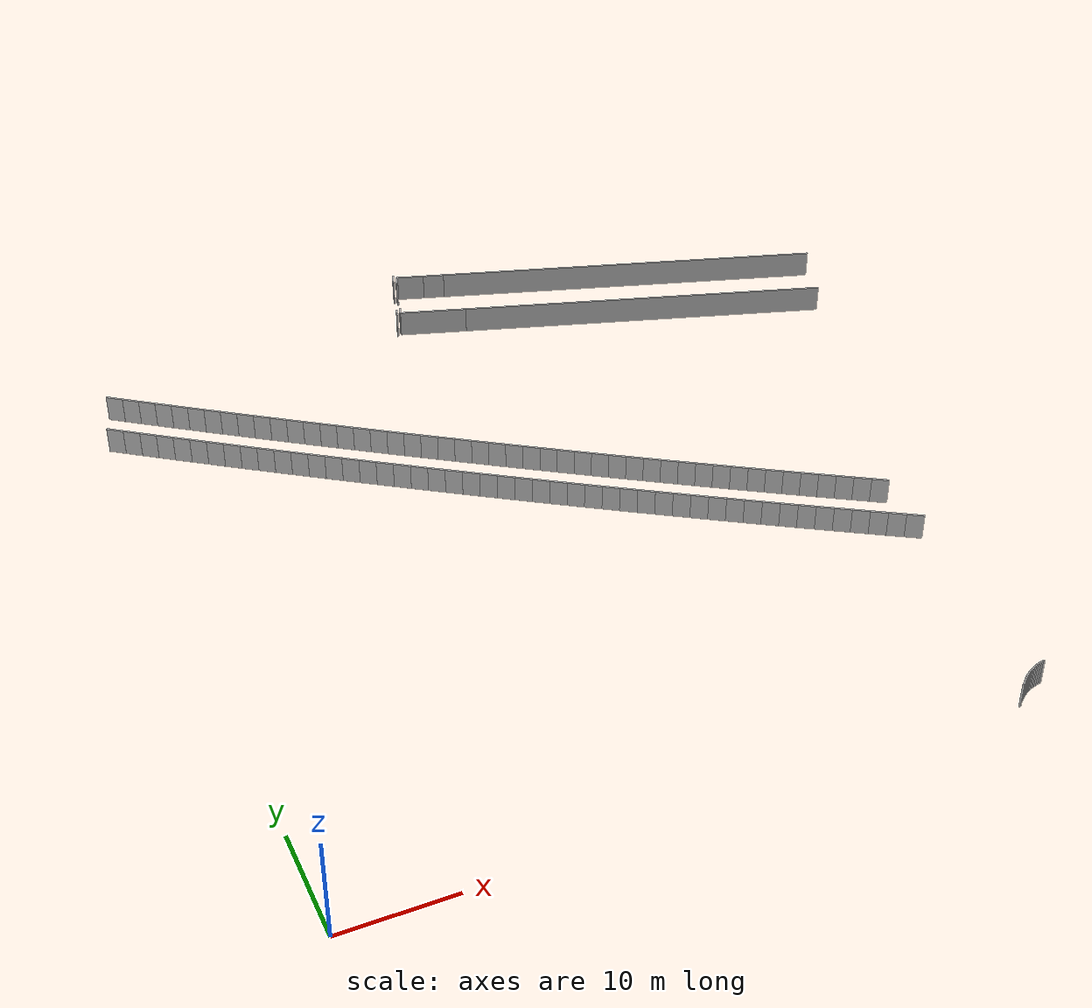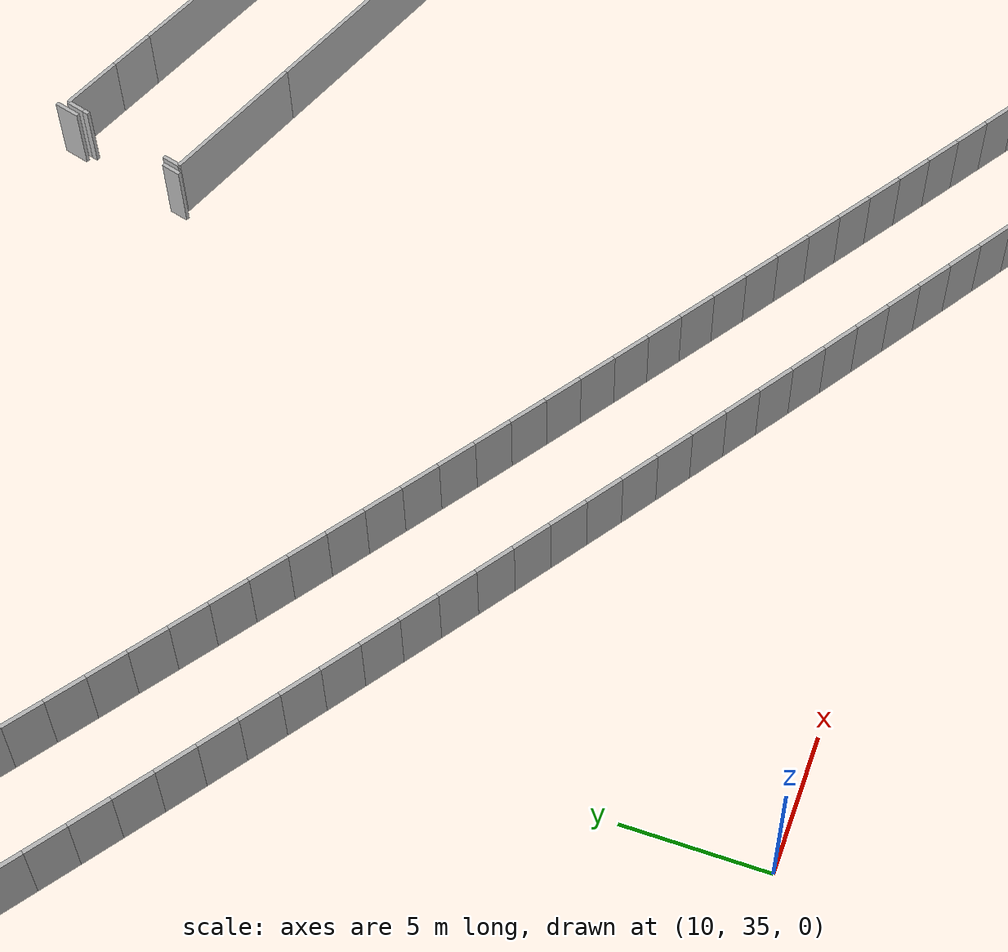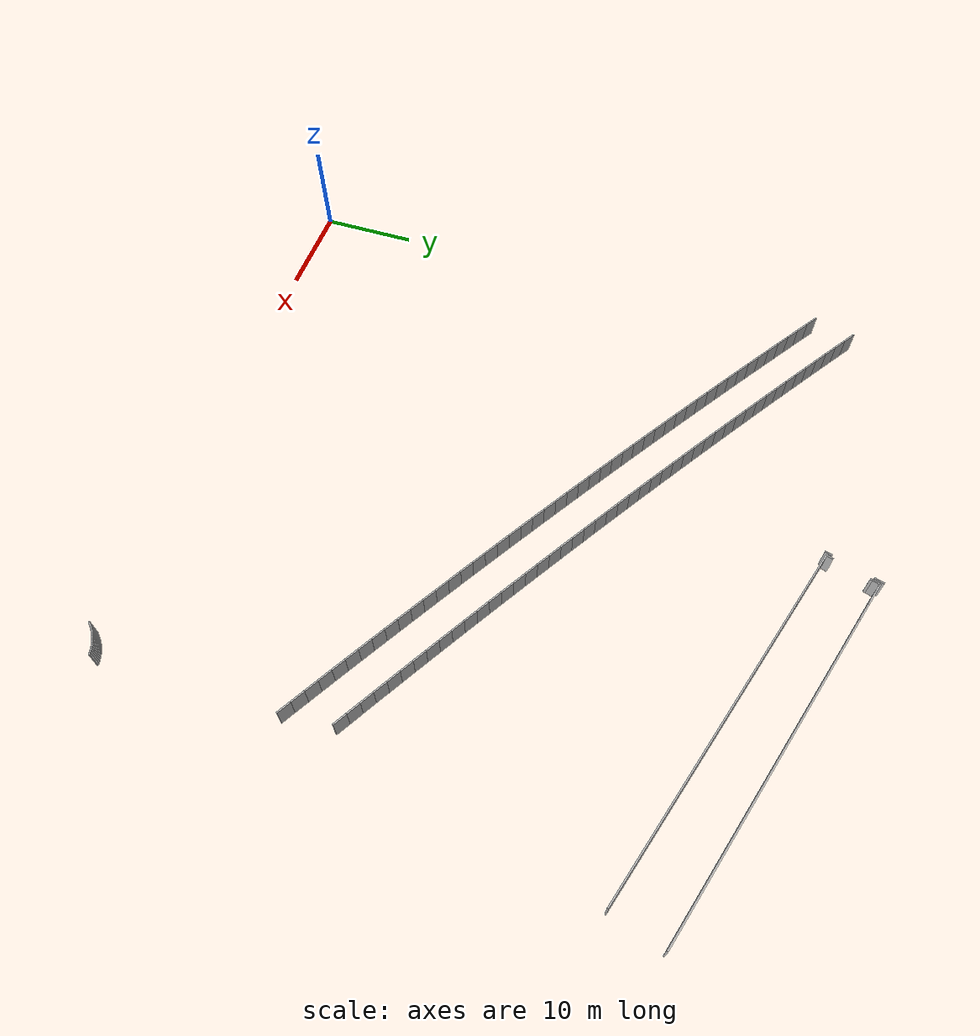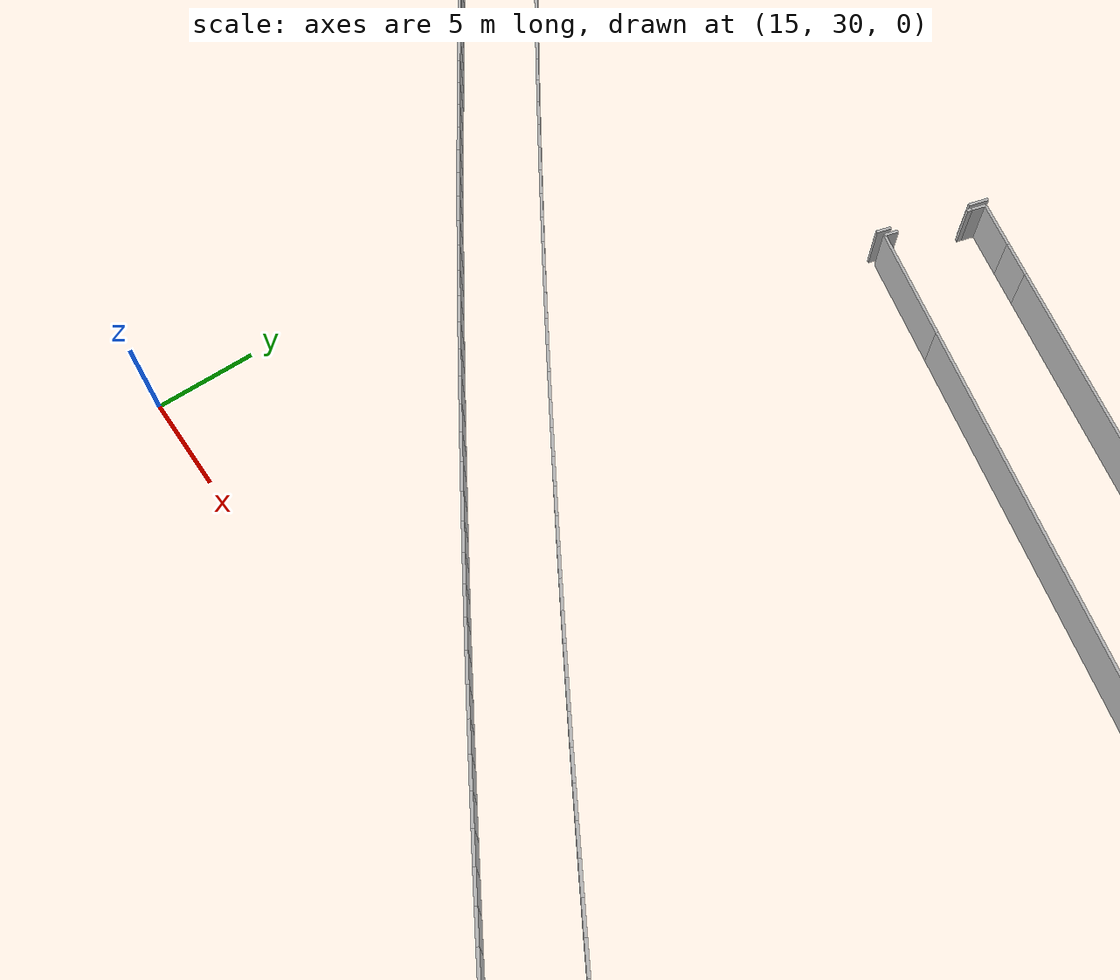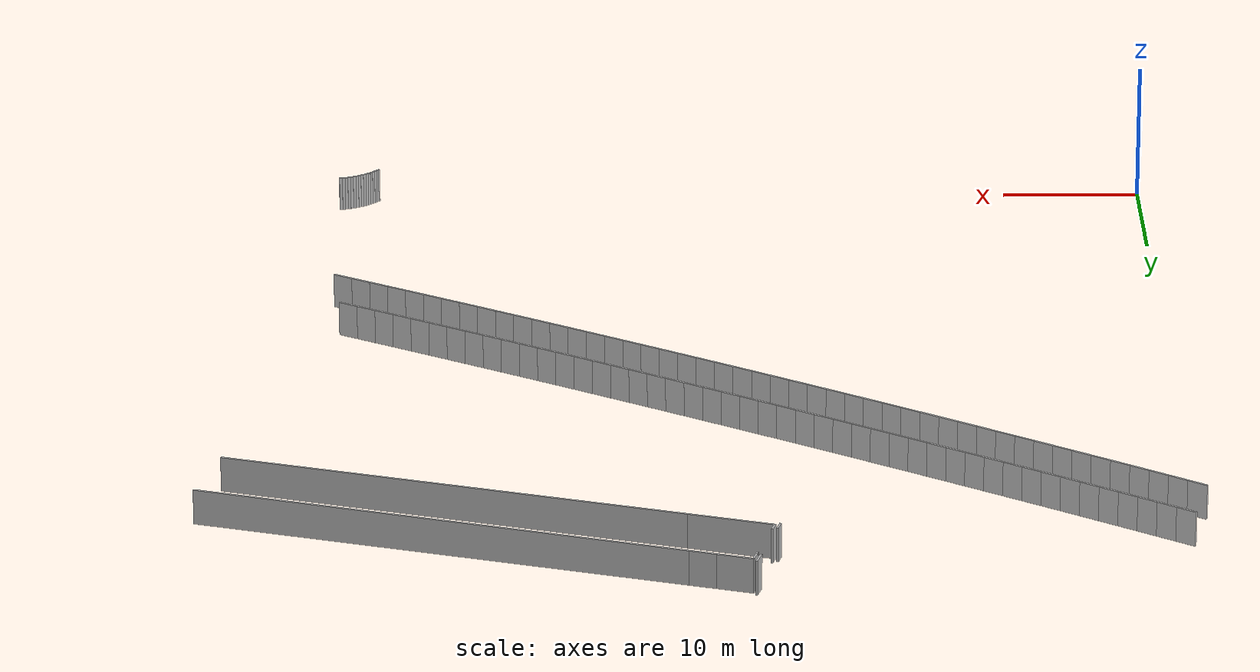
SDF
<sdf version="1.6">
 <model name="sps_0603">
  <static>1</static>
  <allow_auto_disable>0</allow_auto_disable>
  <link name="Wall8">
   <collision name="collision"><geometry><box><size>1.06106 0.15 2.5</size></box></geometry></collision>
   <visual name="visual">
    <geometry><box><size>1.06106 0.15 2.5</size></box></geometry>
    <transparency>0.0</transparency>
   </visual>
   <pose>29.9149 68.4915 1.25 0 0 -1.85665</pose>
  </link>
  <link name="Wall177">
   <collision name="collision"><geometry><box><size>0.246796 0.15 2.5</size></box></geometry></collision>
   <visual name="visual">
    <geometry><box><size>0.246796 0.15 2.5</size></box></geometry>
    <transparency>0.0</transparency>
   </visual>
   <pose>30.017 67.7747 1.25 0 -0 1.28545</pose>
  </link>
  <link name="Wall178">
   <collision name="collision"><geometry><box><size>0.765576 0.15 2.5</size></box></geometry></collision>
   <visual name="visual">
    <geometry><box><size>0.765576 0.15 2.5</size></box></geometry>
    <transparency>0.0</transparency>
   </visual>
   <pose>30.1595 68.2604 1.25 0 -0 1.28545</pose>
  </link>
  <link name="Wall278">
   <collision name="collision"><geometry><box><size>32.9414 0.15 2.5</size></box></geometry></collision>
   <visual name="visual">
    <geometry><box><size>32.9414 0.15 2.5</size></box></geometry>
    <transparency>0.0</transparency>
   </visual>
   <pose>50.2124 56.7392 1.25 0 -0 2.84321</pose>
  </link>
  <link name="Wall279">
   <collision name="collision"><geometry><box><size>6.01664 0.15 2.5</size></box></geometry></collision>
   <visual name="visual">
    <geometry><box><size>6.01664 0.15 2.5</size></box></geometry>
    <transparency>0.0</transparency>
   </visual>
   <pose>31.594 62.4655 1.25 0 -0 2.84321</pose>
  </link>
  <link name="Wall338">
   <collision name="collision"><geometry><box><size>0.779484 0.15 2.5</size></box></geometry></collision>
   <visual name="visual">
    <geometry><box><size>0.779484 0.15 2.5</size></box></geometry>
    <transparency>0.0</transparency>
   </visual>
   <pose>28.4556 63.5212 1.25 0 -0 1.28471</pose>
  </link>
  <link name="Wall422">
   <collision name="collision"><geometry><box><size>0.728133 0.15 2.5</size></box></geometry></collision>
   <visual name="visual">
    <geometry><box><size>0.728133 0.15 2.5</size></box></geometry>
    <transparency>0.0</transparency>
   </visual>
   <pose>28.8209 63.6993 1.25 0 -0 1.28624</pose>
  </link>
  <link name="Wall599">
   <collision name="collision"><geometry><box><size>2.4989 0.15 2.5</size></box></geometry></collision>
   <visual name="visual">
    <geometry><box><size>2.4989 0.15 2.5</size></box></geometry>
    <transparency>0.0</transparency>
   </visual>
   <pose>31.4615 68.2604 1.25 0 0 -0.298385</pose>
  </link>
  <link name="Wall600">
   <collision name="collision"><geometry><box><size>1.89758 0.15 2.5</size></box></geometry></collision>
   <visual name="visual">
    <geometry><box><size>1.89758 0.15 2.5</size></box></geometry>
    <transparency>0.0</transparency>
   </visual>
   <pose>33.5626 67.6142 1.25 0 0 -0.298385</pose>
  </link>
  <link name="Wall601">
   <collision name="collision"><geometry><box><size>34.6331 0.15 2.5</size></box></geometry></collision>
   <visual name="visual">
    <geometry><box><size>34.6331 0.15 2.5</size></box></geometry>
    <transparency>0.0</transparency>
   </visual>
   <pose>51.0208 62.2446 1.25 0 0 -0.298385</pose>
  </link>
  <link name="Wall2512">
   <collision name="collision"><geometry><box><size>0.130798 0.15 2.5</size></box></geometry></collision>
   <visual name="visual">
    <geometry><box><size>0.130798 0.15 2.5</size></box></geometry>
    <transparency>0.0</transparency>
   </visual>
   <pose>56.5082 0.300887 1.25 0 -0 0.557066</pose>
  </link>
  <link name="Wall2513">
   <collision name="collision"><geometry><box><size>0.205358 0.15 2.5</size></box></geometry></collision>
   <visual name="visual">
    <geometry><box><size>0.205358 0.15 2.5</size></box></geometry>
    <transparency>0.0</transparency>
   </visual>
   <pose>56.6314 0.412673 1.25 0 -0 0.851016</pose>
  </link>
  <link name="Wall2514">
   <collision name="collision"><geometry><box><size>0.20509 0.15 2.5</size></box></geometry></collision>
   <visual name="visual">
    <geometry><box><size>0.20509 0.15 2.5</size></box></geometry>
    <transparency>0.0</transparency>
   </visual>
   <pose>56.77 0.563888 1.25 0 -0 0.806233</pose>
  </link>
  <link name="Wall2515">
   <collision name="collision"><geometry><box><size>0.205411 0.15 2.5</size></box></geometry></collision>
   <visual name="visual">
    <geometry><box><size>0.205411 0.15 2.5</size></box></geometry>
    <transparency>0.0</transparency>
   </visual>
   <pose>56.9154 0.708693 1.25 0 -0 0.760603</pose>
  </link>
  <link name="Wall2516">
   <collision name="collision"><geometry><box><size>0.205158 0.15 2.5</size></box></geometry></collision>
   <visual name="visual">
    <geometry><box><size>0.205158 0.15 2.5</size></box></geometry>
    <transparency>0.0</transparency>
   </visual>
   <pose>57.0673 0.846785 1.25 0 -0 0.7155</pose>
  </link>
  <link name="Wall2517">
   <collision name="collision"><geometry><box><size>0.205152 0.15 2.5</size></box></geometry></collision>
   <visual name="visual">
    <geometry><box><size>0.205152 0.15 2.5</size></box></geometry>
    <transparency>0.0</transparency>
   </visual>
   <pose>57.2251 0.977797 1.25 0 -0 0.67028</pose>
  </link>
  <link name="Wall2518">
   <collision name="collision"><geometry><box><size>0.205097 0.15 2.5</size></box></geometry></collision>
   <visual name="visual">
    <geometry><box><size>0.205097 0.15 2.5</size></box></geometry>
    <transparency>0.0</transparency>
   </visual>
   <pose>57.3885 1.10161 1.25 0 -0 0.626061</pose>
  </link>
  <link name="Wall2519">
   <collision name="collision"><geometry><box><size>0.205175 0.15 2.5</size></box></geometry></collision>
   <visual name="visual">
    <geometry><box><size>0.205175 0.15 2.5</size></box></geometry>
    <transparency>0.0</transparency>
   </visual>
   <pose>57.5575 1.21791 1.25 0 -0 0.579917</pose>
  </link>
  <link name="Wall2520">
   <collision name="collision"><geometry><box><size>0.205332 0.15 2.5</size></box></geometry></collision>
   <visual name="visual">
    <geometry><box><size>0.205332 0.15 2.5</size></box></geometry>
    <transparency>0.0</transparency>
   </visual>
   <pose>57.7316 1.32652 1.25 0 -0 0.535628</pose>
  </link>
  <link name="Wall2521">
   <collision name="collision"><geometry><box><size>0.205171 0.15 2.5</size></box></geometry></collision>
   <visual name="visual">
    <geometry><box><size>0.205171 0.15 2.5</size></box></geometry>
    <transparency>0.0</transparency>
   </visual>
   <pose>57.9104 1.4272 1.25 0 -0 0.489992</pose>
  </link>
  <link name="Wall2522">
   <collision name="collision"><geometry><box><size>0.205276 0.15 2.5</size></box></geometry></collision>
   <visual name="visual">
    <geometry><box><size>0.205276 0.15 2.5</size></box></geometry>
    <transparency>0.0</transparency>
   </visual>
   <pose>58.0936 1.51958 1.25 0 -0 0.4441</pose>
  </link>
  <link name="Wall2523">
   <collision name="collision"><geometry><box><size>0.205096 0.15 2.5</size></box></geometry></collision>
   <visual name="visual">
    <geometry><box><size>0.205096 0.15 2.5</size></box></geometry>
    <transparency>0.0</transparency>
   </visual>
   <pose>58.2807 1.60368 1.25 0 -0 0.400789</pose>
  </link>
  <link name="Wall2524">
   <collision name="collision"><geometry><box><size>0.205381 0.15 2.5</size></box></geometry></collision>
   <visual name="visual">
    <geometry><box><size>0.205381 0.15 2.5</size></box></geometry>
    <transparency>0.0</transparency>
   </visual>
   <pose>58.4714 1.6794 1.25 0 -0 0.355119</pose>
  </link>
  <link name="Wall2525">
   <collision name="collision"><geometry><box><size>0.205148 0.15 2.5</size></box></geometry></collision>
   <visual name="visual">
    <geometry><box><size>0.205148 0.15 2.5</size></box></geometry>
    <transparency>0.0</transparency>
   </visual>
   <pose>58.6654 1.74629 1.25 0 -0 0.308955</pose>
  </link>
  <link name="Wall2526">
   <collision name="collision"><geometry><box><size>0.205122 0.15 2.5</size></box></geometry></collision>
   <visual name="visual">
    <geometry><box><size>0.205122 0.15 2.5</size></box></geometry>
    <transparency>0.0</transparency>
   </visual>
   <pose>58.8621 1.80427 1.25 0 -0 0.264321</pose>
  </link>
  <link name="Wall2527">
   <collision name="collision"><geometry><box><size>0.205147 0.15 2.5</size></box></geometry></collision>
   <visual name="visual">
    <geometry><box><size>0.205147 0.15 2.5</size></box></geometry>
    <transparency>0.0</transparency>
   </visual>
   <pose>59.0612 1.85347 1.25 0 -0 0.220153</pose>
  </link>
  <link name="Wall2528">
   <collision name="collision"><geometry><box><size>0.205267 0.15 2.5</size></box></geometry></collision>
   <visual name="visual">
    <geometry><box><size>0.205267 0.15 2.5</size></box></geometry>
    <transparency>0.0</transparency>
   </visual>
   <pose>59.2624 1.89369 1.25 0 -0 0.174534</pose>
  </link>
  <link name="Wall8672">
   <collision name="collision"><geometry><box><size>1.49904 0.15 2.5</size></box></geometry></collision>
   <visual name="visual">
    <geometry><box><size>1.49904 0.15 2.5</size></box></geometry>
    <transparency>0.0</transparency>
   </visual>
   <pose>0.140952 57.1969 1.25 0 0 -0.596416</pose>
  </link>
  <link name="Wall8673">
   <collision name="collision"><geometry><box><size>1.49892 0.15 2.5</size></box></geometry></collision>
   <visual name="visual">
    <geometry><box><size>1.49892 0.15 2.5</size></box></geometry>
    <transparency>0.0</transparency>
   </visual>
   <pose>1.38186 56.356 1.25 0 0 -0.5947</pose>
  </link>
  <link name="Wall8674">
   <collision name="collision"><geometry><box><size>1.49899 0.15 2.5</size></box></geometry></collision>
   <visual name="visual">
    <geometry><box><size>1.49899 0.15 2.5</size></box></geometry>
    <transparency>0.0</transparency>
   </visual>
   <pose>2.62414 55.5172 1.25 0 0 -0.593096</pose>
  </link>
  <link name="Wall8675">
   <collision name="collision"><geometry><box><size>1.49898 0.15 2.5</size></box></geometry></collision>
   <visual name="visual">
    <geometry><box><size>1.49898 0.15 2.5</size></box></geometry>
    <transparency>0.0</transparency>
   </visual>
   <pose>3.86773 54.6803 1.25 0 0 -0.591628</pose>
  </link>
  <link name="Wall8676">
   <collision name="collision"><geometry><box><size>1.49887 0.15 2.5</size></box></geometry></collision>
   <visual name="visual">
    <geometry><box><size>1.49887 0.15 2.5</size></box></geometry>
    <transparency>0.0</transparency>
   </visual>
   <pose>5.11254 53.8453 1.25 0 0 -0.590058</pose>
  </link>
  <link name="Wall8677">
   <collision name="collision"><geometry><box><size>1.49895 0.15 2.5</size></box></geometry></collision>
   <visual name="visual">
    <geometry><box><size>1.49895 0.15 2.5</size></box></geometry>
    <transparency>0.0</transparency>
   </visual>
   <pose>6.35866 53.0123 1.25 0 0 -0.588454</pose>
  </link>
  <link name="Wall8678">
   <collision name="collision"><geometry><box><size>1.49892 0.15 2.5</size></box></geometry></collision>
   <visual name="visual">
    <geometry><box><size>1.49892 0.15 2.5</size></box></geometry>
    <transparency>0.0</transparency>
   </visual>
   <pose>7.60616 52.1813 1.25 0 0 -0.586805</pose>
  </link>
  <link name="Wall8679">
   <collision name="collision"><geometry><box><size>1.49899 0.15 2.5</size></box></geometry></collision>
   <visual name="visual">
    <geometry><box><size>1.49899 0.15 2.5</size></box></geometry>
    <transparency>0.0</transparency>
   </visual>
   <pose>8.85494 51.3522 1.25 0 0 -0.585405</pose>
  </link>
  <link name="Wall8680">
   <collision name="collision"><geometry><box><size>1.49891 0.15 2.5</size></box></geometry></collision>
   <visual name="visual">
    <geometry><box><size>1.49891 0.15 2.5</size></box></geometry>
    <transparency>0.0</transparency>
   </visual>
   <pose>10.105 50.5251 1.25 0 0 -0.583632</pose>
  </link>
  <link name="Wall8681">
   <collision name="collision"><geometry><box><size>1.49898 0.15 2.5</size></box></geometry></collision>
   <visual name="visual">
    <geometry><box><size>1.49898 0.15 2.5</size></box></geometry>
    <transparency>0.0</transparency>
   </visual>
   <pose>11.3565 49.7001 1.25 0 0 -0.581995</pose>
  </link>
  <link name="Wall8682">
   <collision name="collision"><geometry><box><size>1.49903 0.15 2.5</size></box></geometry></collision>
   <visual name="visual">
    <geometry><box><size>1.49903 0.15 2.5</size></box></geometry>
    <transparency>0.0</transparency>
   </visual>
   <pose>12.6093 48.877 1.25 0 0 -0.580561</pose>
  </link>
  <link name="Wall8683">
   <collision name="collision"><geometry><box><size>1.49874 0.15 2.5</size></box></geometry></collision>
   <visual name="visual">
    <geometry><box><size>1.49874 0.15 2.5</size></box></geometry>
    <transparency>0.0</transparency>
   </visual>
   <pose>13.8632 48.0558 1.25 0 0 -0.57908</pose>
  </link>
  <link name="Wall8684">
   <collision name="collision"><geometry><box><size>1.49905 0.15 2.5</size></box></geometry></collision>
   <visual name="visual">
    <geometry><box><size>1.49905 0.15 2.5</size></box></geometry>
    <transparency>0.0</transparency>
   </visual>
   <pose>15.1185 47.2366 1.25 0 0 -0.577387</pose>
  </link>
  <link name="Wall8685">
   <collision name="collision"><geometry><box><size>1.49895 0.15 2.5</size></box></geometry></collision>
   <visual name="visual">
    <geometry><box><size>1.49895 0.15 2.5</size></box></geometry>
    <transparency>0.0</transparency>
   </visual>
   <pose>16.3752 46.4195 1.25 0 0 -0.575636</pose>
  </link>
  <link name="Wall8686">
   <collision name="collision"><geometry><box><size>1.49901 0.15 2.5</size></box></geometry></collision>
   <visual name="visual">
    <geometry><box><size>1.49901 0.15 2.5</size></box></geometry>
    <transparency>0.0</transparency>
   </visual>
   <pose>17.6332 45.6044 1.25 0 0 -0.574202</pose>
  </link>
  <link name="Wall8687">
   <collision name="collision"><geometry><box><size>1.49889 0.15 2.5</size></box></geometry></collision>
   <visual name="visual">
    <geometry><box><size>1.49889 0.15 2.5</size></box></geometry>
    <transparency>0.0</transparency>
   </visual>
   <pose>18.8924 44.7912 1.25 0 0 -0.572654</pose>
  </link>
  <link name="Wall8688">
   <collision name="collision"><geometry><box><size>1.49883 0.15 2.5</size></box></geometry></collision>
   <visual name="visual">
    <geometry><box><size>1.49883 0.15 2.5</size></box></geometry>
    <transparency>0.0</transparency>
   </visual>
   <pose>20.1527 43.98 1.25 0 0 -0.571083</pose>
  </link>
  <link name="Wall8689">
   <collision name="collision"><geometry><box><size>1.499 0.15 2.5</size></box></geometry></collision>
   <visual name="visual">
    <geometry><box><size>1.499 0.15 2.5</size></box></geometry>
    <transparency>0.0</transparency>
   </visual>
   <pose>21.4145 43.1708 1.25 0 0 -0.569459</pose>
  </link>
  <link name="Wall8690">
   <collision name="collision"><geometry><box><size>1.49894 0.15 2.5</size></box></geometry></collision>
   <visual name="visual">
    <geometry><box><size>1.49894 0.15 2.5</size></box></geometry>
    <transparency>0.0</transparency>
   </visual>
   <pose>22.6775 42.3635 1.25 0 0 -0.568035</pose>
  </link>
  <link name="Wall8691">
   <collision name="collision"><geometry><box><size>1.4989 0.15 2.5</size></box></geometry></collision>
   <visual name="visual">
    <geometry><box><size>1.4989 0.15 2.5</size></box></geometry>
    <transparency>0.0</transparency>
   </visual>
   <pose>23.9417 41.5583 1.25 0 0 -0.56617</pose>
  </link>
  <link name="Wall8692">
   <collision name="collision"><geometry><box><size>1.49895 0.15 2.5</size></box></geometry></collision>
   <visual name="visual">
    <geometry><box><size>1.49895 0.15 2.5</size></box></geometry>
    <transparency>0.0</transparency>
   </visual>
   <pose>25.2074 40.7552 1.25 0 0 -0.564702</pose>
  </link>
  <link name="Wall8693">
   <collision name="collision"><geometry><box><size>1.49901 0.15 2.5</size></box></geometry></collision>
   <visual name="visual">
    <geometry><box><size>1.49901 0.15 2.5</size></box></geometry>
    <transparency>0.0</transparency>
   </visual>
   <pose>26.4743 39.954 1.25 0 0 -0.563088</pose>
  </link>
  <link name="Wall8694">
   <collision name="collision"><geometry><box><size>1.49894 0.15 2.5</size></box></geometry></collision>
   <visual name="visual">
    <geometry><box><size>1.49894 0.15 2.5</size></box></geometry>
    <transparency>0.0</transparency>
   </visual>
   <pose>27.7424 39.1547 1.25 0 0 -0.56172</pose>
  </link>
  <link name="Wall8695">
   <collision name="collision"><geometry><box><size>1.49891 0.15 2.5</size></box></geometry></collision>
   <visual name="visual">
    <geometry><box><size>1.49891 0.15 2.5</size></box></geometry>
    <transparency>0.0</transparency>
   </visual>
   <pose>29.0116 38.3574 1.25 0 0 -0.560002</pose>
  </link>
  <link name="Wall8696">
   <collision name="collision"><geometry><box><size>1.49893 0.15 2.5</size></box></geometry></collision>
   <visual name="visual">
    <geometry><box><size>1.49893 0.15 2.5</size></box></geometry>
    <transparency>0.0</transparency>
   </visual>
   <pose>30.2822 37.5622 1.25 0 0 -0.558409</pose>
  </link>
  <link name="Wall8697">
   <collision name="collision"><geometry><box><size>1.49903 0.15 2.5</size></box></geometry></collision>
   <visual name="visual">
    <geometry><box><size>1.49903 0.15 2.5</size></box></geometry>
    <transparency>0.0</transparency>
   </visual>
   <pose>31.5542 36.769 1.25 0 0 -0.55683</pose>
  </link>
  <link name="Wall8698">
   <collision name="collision"><geometry><box><size>1.49898 0.15 2.5</size></box></geometry></collision>
   <visual name="visual">
    <geometry><box><size>1.49898 0.15 2.5</size></box></geometry>
    <transparency>0.0</transparency>
   </visual>
   <pose>32.8274 35.9778 1.25 0 0 -0.555224</pose>
  </link>
  <link name="Wall8699">
   <collision name="collision"><geometry><box><size>1.49878 0.15 2.5</size></box></geometry></collision>
   <visual name="visual">
    <geometry><box><size>1.49878 0.15 2.5</size></box></geometry>
    <transparency>0.0</transparency>
   </visual>
   <pose>34.1016 35.1886 1.25 0 0 -0.553773</pose>
  </link>
  <link name="Wall8700">
   <collision name="collision"><geometry><box><size>1.49912 0.15 2.5</size></box></geometry></collision>
   <visual name="visual">
    <geometry><box><size>1.49912 0.15 2.5</size></box></geometry>
    <transparency>0.0</transparency>
   </visual>
   <pose>35.3773 34.4014 1.25 0 0 -0.552052</pose>
  </link>
  <link name="Wall8701">
   <collision name="collision"><geometry><box><size>1.4988 0.15 2.5</size></box></geometry></collision>
   <visual name="visual">
    <geometry><box><size>1.4988 0.15 2.5</size></box></geometry>
    <transparency>0.0</transparency>
   </visual>
   <pose>36.6542 33.6163 1.25 0 0 -0.550462</pose>
  </link>
  <link name="Wall8702">
   <collision name="collision"><geometry><box><size>1.49877 0.15 2.5</size></box></geometry></collision>
   <visual name="visual">
    <geometry><box><size>1.49877 0.15 2.5</size></box></geometry>
    <transparency>0.0</transparency>
   </visual>
   <pose>37.9322 32.8333 1.25 0 0 -0.548947</pose>
  </link>
  <link name="Wall8703">
   <collision name="collision"><geometry><box><size>1.49907 0.15 2.5</size></box></geometry></collision>
   <visual name="visual">
    <geometry><box><size>1.49907 0.15 2.5</size></box></geometry>
    <transparency>0.0</transparency>
   </visual>
   <pose>39.2114 32.0522 1.25 0 0 -0.547395</pose>
  </link>
  <link name="Wall8704">
   <collision name="collision"><geometry><box><size>1.49889 0.15 2.5</size></box></geometry></collision>
   <visual name="visual">
    <geometry><box><size>1.49889 0.15 2.5</size></box></geometry>
    <transparency>0.0</transparency>
   </visual>
   <pose>40.4921 31.2731 1.25 0 0 -0.545706</pose>
  </link>
  <link name="Wall8705">
   <collision name="collision"><geometry><box><size>1.49892 0.15 2.5</size></box></geometry></collision>
   <visual name="visual">
    <geometry><box><size>1.49892 0.15 2.5</size></box></geometry>
    <transparency>0.0</transparency>
   </visual>
   <pose>41.7739 30.4961 1.25 0 0 -0.54417</pose>
  </link>
  <link name="Wall8706">
   <collision name="collision"><geometry><box><size>1.49887 0.15 2.5</size></box></geometry></collision>
   <visual name="visual">
    <geometry><box><size>1.49887 0.15 2.5</size></box></geometry>
    <transparency>0.0</transparency>
   </visual>
   <pose>43.0568 29.7211 1.25 0 0 -0.542619</pose>
  </link>
  <link name="Wall8707">
   <collision name="collision"><geometry><box><size>1.49912 0.15 2.5</size></box></geometry></collision>
   <visual name="visual">
    <geometry><box><size>1.49912 0.15 2.5</size></box></geometry>
    <transparency>0.0</transparency>
   </visual>
   <pose>44.3411 28.9481 1.25 0 0 -0.540999</pose>
  </link>
  <link name="Wall8708">
   <collision name="collision"><geometry><box><size>1.49892 0.15 2.5</size></box></geometry></collision>
   <visual name="visual">
    <geometry><box><size>1.49892 0.15 2.5</size></box></geometry>
    <transparency>0.0</transparency>
   </visual>
   <pose>45.6267 28.1771 1.25 0 0 -0.539512</pose>
  </link>
  <link name="Wall8709">
   <collision name="collision"><geometry><box><size>1.49901 0.15 2.5</size></box></geometry></collision>
   <visual name="visual">
    <geometry><box><size>1.49901 0.15 2.5</size></box></geometry>
    <transparency>0.0</transparency>
   </visual>
   <pose>46.9134 27.4081 1.25 0 0 -0.537864</pose>
  </link>
  <link name="Wall8710">
   <collision name="collision"><geometry><box><size>1.49898 0.15 2.5</size></box></geometry></collision>
   <visual name="visual">
    <geometry><box><size>1.49898 0.15 2.5</size></box></geometry>
    <transparency>0.0</transparency>
   </visual>
   <pose>48.2013 26.6411 1.25 0 0 -0.536404</pose>
  </link>
  <link name="Wall8711">
   <collision name="collision"><geometry><box><size>1.49877 0.15 2.5</size></box></geometry></collision>
   <visual name="visual">
    <geometry><box><size>1.49877 0.15 2.5</size></box></geometry>
    <transparency>0.0</transparency>
   </visual>
   <pose>49.4903 25.8762 1.25 0 0 -0.534734</pose>
  </link>
  <link name="Wall8712">
   <collision name="collision"><geometry><box><size>1.49901 0.15 2.5</size></box></geometry></collision>
   <visual name="visual">
    <geometry><box><size>1.49901 0.15 2.5</size></box></geometry>
    <transparency>0.0</transparency>
   </visual>
   <pose>50.7805 25.1134 1.25 0 0 -0.53308</pose>
  </link>
  <link name="Wall8713">
   <collision name="collision"><geometry><box><size>1.49907 0.15 2.5</size></box></geometry></collision>
   <visual name="visual">
    <geometry><box><size>1.49907 0.15 2.5</size></box></geometry>
    <transparency>0.0</transparency>
   </visual>
   <pose>52.0722 24.3526 1.25 0 0 -0.531544</pose>
  </link>
  <link name="Wall8714">
   <collision name="collision"><geometry><box><size>1.49881 0.15 2.5</size></box></geometry></collision>
   <visual name="visual">
    <geometry><box><size>1.49881 0.15 2.5</size></box></geometry>
    <transparency>0.0</transparency>
   </visual>
   <pose>53.3649 23.5938 1.25 0 0 -0.530041</pose>
  </link>
  <link name="Wall8715">
   <collision name="collision"><geometry><box><size>1.499 0.15 2.5</size></box></geometry></collision>
   <visual name="visual">
    <geometry><box><size>1.499 0.15 2.5</size></box></geometry>
    <transparency>0.0</transparency>
   </visual>
   <pose>54.6587 22.8371 1.25 0 0 -0.528318</pose>
  </link>
  <link name="Wall8716">
   <collision name="collision"><geometry><box><size>1.49898 0.15 2.5</size></box></geometry></collision>
   <visual name="visual">
    <geometry><box><size>1.49898 0.15 2.5</size></box></geometry>
    <transparency>0.0</transparency>
   </visual>
   <pose>55.9539 22.0825 1.25 0 0 -0.526767</pose>
  </link>
  <link name="Wall8717">
   <collision name="collision"><geometry><box><size>1.49887 0.15 2.5</size></box></geometry></collision>
   <visual name="visual">
    <geometry><box><size>1.49887 0.15 2.5</size></box></geometry>
    <transparency>0.0</transparency>
   </visual>
   <pose>57.2502 21.3299 1.25 0 0 -0.525258</pose>
  </link>
  <link name="Wall8718">
   <collision name="collision"><geometry><box><size>1.49895 0.15 2.5</size></box></geometry></collision>
   <visual name="visual">
    <geometry><box><size>1.49895 0.15 2.5</size></box></geometry>
    <transparency>0.0</transparency>
   </visual>
   <pose>58.5477 20.5793 1.25 0 0 -0.523722</pose>
  </link>
  <link name="Wall9752">
   <collision name="collision"><geometry><box><size>1.49225 0.15 2.5</size></box></geometry></collision>
   <visual name="visual">
    <geometry><box><size>1.49225 0.15 2.5</size></box></geometry>
    <transparency>0.0</transparency>
   </visual>
   <pose>1.23196 61.4617 1.25 0 0 -0.597872</pose>
  </link>
  <link name="Wall9753">
   <collision name="collision"><geometry><box><size>1.49247 0.15 2.5</size></box></geometry></collision>
   <visual name="visual">
    <geometry><box><size>1.49247 0.15 2.5</size></box></geometry>
    <transparency>0.0</transparency>
   </visual>
   <pose>2.46615 60.6227 1.25 0 0 -0.596192</pose>
  </link>
  <link name="Wall9754">
   <collision name="collision"><geometry><box><size>1.49243 0.15 2.5</size></box></geometry></collision>
   <visual name="visual">
    <geometry><box><size>1.49243 0.15 2.5</size></box></geometry>
    <transparency>0.0</transparency>
   </visual>
   <pose>3.70165 59.7855 1.25 0 0 -0.594922</pose>
  </link>
  <link name="Wall9755">
   <collision name="collision"><geometry><box><size>1.49228 0.15 2.5</size></box></geometry></collision>
   <visual name="visual">
    <geometry><box><size>1.49228 0.15 2.5</size></box></geometry>
    <transparency>0.0</transparency>
   </visual>
   <pose>4.93835 58.9502 1.25 0 0 -0.593164</pose>
  </link>
  <link name="Wall9756">
   <collision name="collision"><geometry><box><size>1.49241 0.15 2.5</size></box></geometry></collision>
   <visual name="visual">
    <geometry><box><size>1.49241 0.15 2.5</size></box></geometry>
    <transparency>0.0</transparency>
   </visual>
   <pose>6.17644 58.117 1.25 0 0 -0.59153</pose>
  </link>
  <link name="Wall9757">
   <collision name="collision"><geometry><box><size>1.49235 0.15 2.5</size></box></geometry></collision>
   <visual name="visual">
    <geometry><box><size>1.49235 0.15 2.5</size></box></geometry>
    <transparency>0.0</transparency>
   </visual>
   <pose>7.41585 57.2857 1.25 0 0 -0.590078</pose>
  </link>
  <link name="Wall9758">
   <collision name="collision"><geometry><box><size>1.49243 0.15 2.5</size></box></geometry></collision>
   <visual name="visual">
    <geometry><box><size>1.49243 0.15 2.5</size></box></geometry>
    <transparency>0.0</transparency>
   </visual>
   <pose>8.65655 56.4563 1.25 0 0 -0.588468</pose>
  </link>
  <link name="Wall9759">
   <collision name="collision"><geometry><box><size>1.49243 0.15 2.5</size></box></geometry></collision>
   <visual name="visual">
    <geometry><box><size>1.49243 0.15 2.5</size></box></geometry>
    <transparency>0.0</transparency>
   </visual>
   <pose>9.89855 55.6288 1.25 0 0 -0.586993</pose>
  </link>
  <link name="Wall9760">
   <collision name="collision"><geometry><box><size>1.49254 0.15 2.5</size></box></geometry></collision>
   <visual name="visual">
    <geometry><box><size>1.49254 0.15 2.5</size></box></geometry>
    <transparency>0.0</transparency>
   </visual>
   <pose>11.142 54.8033 1.25 0 0 -0.585178</pose>
  </link>
  <link name="Wall9761">
   <collision name="collision"><geometry><box><size>1.49224 0.15 2.5</size></box></geometry></collision>
   <visual name="visual">
    <geometry><box><size>1.49224 0.15 2.5</size></box></geometry>
    <transparency>0.0</transparency>
   </visual>
   <pose>12.3866 53.9799 1.25 0 0 -0.583692</pose>
  </link>
  <link name="Wall9762">
   <collision name="collision"><geometry><box><size>1.49261 0.15 2.5</size></box></geometry></collision>
   <visual name="visual">
    <geometry><box><size>1.49261 0.15 2.5</size></box></geometry>
    <transparency>0.0</transparency>
   </visual>
   <pose>13.6327 53.1584 1.25 0 0 -0.58206</pose>
  </link>
  <link name="Wall9763">
   <collision name="collision"><geometry><box><size>1.49225 0.15 2.5</size></box></geometry></collision>
   <visual name="visual">
    <geometry><box><size>1.49225 0.15 2.5</size></box></geometry>
    <transparency>0.0</transparency>
   </visual>
   <pose>14.88 52.3389 1.25 0 0 -0.580504</pose>
  </link>
  <link name="Wall9764">
   <collision name="collision"><geometry><box><size>1.49243 0.15 2.5</size></box></geometry></collision>
   <visual name="visual">
    <geometry><box><size>1.49243 0.15 2.5</size></box></geometry>
    <transparency>0.0</transparency>
   </visual>
   <pose>16.1285 51.5214 1.25 0 0 -0.578962</pose>
  </link>
  <link name="Wall9765">
   <collision name="collision"><geometry><box><size>1.49233 0.15 2.5</size></box></geometry></collision>
   <visual name="visual">
    <geometry><box><size>1.49233 0.15 2.5</size></box></geometry>
    <transparency>0.0</transparency>
   </visual>
   <pose>17.3783 50.7058 1.25 0 0 -0.577442</pose>
  </link>
  <link name="Wall9766">
   <collision name="collision"><geometry><box><size>1.49243 0.15 2.5</size></box></geometry></collision>
   <visual name="visual">
    <geometry><box><size>1.49243 0.15 2.5</size></box></geometry>
    <transparency>0.0</transparency>
   </visual>
   <pose>18.6294 49.8922 1.25 0 0 -0.575741</pose>
  </link>
  <link name="Wall9767">
   <collision name="collision"><geometry><box><size>1.49234 0.15 2.5</size></box></geometry></collision>
   <visual name="visual">
    <geometry><box><size>1.49234 0.15 2.5</size></box></geometry>
    <transparency>0.0</transparency>
   </visual>
   <pose>19.8818 49.0806 1.25 0 0 -0.57422</pose>
  </link>
  <link name="Wall9768">
   <collision name="collision"><geometry><box><size>1.49227 0.15 2.5</size></box></geometry></collision>
   <visual name="visual">
    <geometry><box><size>1.49227 0.15 2.5</size></box></geometry>
    <transparency>0.0</transparency>
   </visual>
   <pose>21.1354 48.271 1.25 0 0 -0.572642</pose>
  </link>
  <link name="Wall9769">
   <collision name="collision"><geometry><box><size>1.49234 0.15 2.5</size></box></geometry></collision>
   <visual name="visual">
    <geometry><box><size>1.49234 0.15 2.5</size></box></geometry>
    <transparency>0.0</transparency>
   </visual>
   <pose>22.3903 47.4634 1.25 0 0 -0.571055</pose>
  </link>
  <link name="Wall9770">
   <collision name="collision"><geometry><box><size>1.49259 0.15 2.5</size></box></geometry></collision>
   <visual name="visual">
    <geometry><box><size>1.49259 0.15 2.5</size></box></geometry>
    <transparency>0.0</transparency>
   </visual>
   <pose>23.6465 46.6577 1.25 0 0 -0.569492</pose>
  </link>
  <link name="Wall9771">
   <collision name="collision"><geometry><box><size>1.49248 0.15 2.5</size></box></geometry></collision>
   <visual name="visual">
    <geometry><box><size>1.49248 0.15 2.5</size></box></geometry>
    <transparency>0.0</transparency>
   </visual>
   <pose>24.9041 45.8539 1.25 0 0 -0.567937</pose>
  </link>
  <link name="Wall9772">
   <collision name="collision"><geometry><box><size>1.49238 0.15 2.5</size></box></geometry></collision>
   <visual name="visual">
    <geometry><box><size>1.49238 0.15 2.5</size></box></geometry>
    <transparency>0.0</transparency>
   </visual>
   <pose>26.163 45.0522 1.25 0 0 -0.566234</pose>
  </link>
  <link name="Wall9773">
   <collision name="collision"><geometry><box><size>1.49248 0.15 2.5</size></box></geometry></collision>
   <visual name="visual">
    <geometry><box><size>1.49248 0.15 2.5</size></box></geometry>
    <transparency>0.0</transparency>
   </visual>
   <pose>27.4231 44.2525 1.25 0 0 -0.564738</pose>
  </link>
  <link name="Wall9774">
   <collision name="collision"><geometry><box><size>1.49242 0.15 2.5</size></box></geometry></collision>
   <visual name="visual">
    <geometry><box><size>1.49242 0.15 2.5</size></box></geometry>
    <transparency>0.0</transparency>
   </visual>
   <pose>28.6844 43.4548 1.25 0 0 -0.563069</pose>
  </link>
  <link name="Wall9775">
   <collision name="collision"><geometry><box><size>1.49227 0.15 2.5</size></box></geometry></collision>
   <visual name="visual">
    <geometry><box><size>1.49227 0.15 2.5</size></box></geometry>
    <transparency>0.0</transparency>
   </visual>
   <pose>29.947 42.6591 1.25 0 0 -0.561682</pose>
  </link>
  <link name="Wall9776">
   <collision name="collision"><geometry><box><size>1.49239 0.15 2.5</size></box></geometry></collision>
   <visual name="visual">
    <geometry><box><size>1.49239 0.15 2.5</size></box></geometry>
    <transparency>0.0</transparency>
   </visual>
   <pose>31.2107 41.8653 1.25 0 0 -0.560039</pose>
  </link>
  <link name="Wall9777">
   <collision name="collision"><geometry><box><size>1.49236 0.15 2.5</size></box></geometry></collision>
   <visual name="visual">
    <geometry><box><size>1.49236 0.15 2.5</size></box></geometry>
    <transparency>0.0</transparency>
   </visual>
   <pose>32.4757 41.0735 1.25 0 0 -0.558461</pose>
  </link>
  <link name="Wall9778">
   <collision name="collision"><geometry><box><size>1.49236 0.15 2.5</size></box></geometry></collision>
   <visual name="visual">
    <geometry><box><size>1.49236 0.15 2.5</size></box></geometry>
    <transparency>0.0</transparency>
   </visual>
   <pose>33.742 40.2838 1.25 0 0 -0.55677</pose>
  </link>
  <link name="Wall9779">
   <collision name="collision"><geometry><box><size>1.49244 0.15 2.5</size></box></geometry></collision>
   <visual name="visual">
    <geometry><box><size>1.49244 0.15 2.5</size></box></geometry>
    <transparency>0.0</transparency>
   </visual>
   <pose>35.0095 39.4961 1.25 0 0 -0.555296</pose>
  </link>
  <link name="Wall9780">
   <collision name="collision"><geometry><box><size>1.49247 0.15 2.5</size></box></geometry></collision>
   <visual name="visual">
    <geometry><box><size>1.49247 0.15 2.5</size></box></geometry>
    <transparency>0.0</transparency>
   </visual>
   <pose>36.2784 38.7104 1.25 0 0 -0.553549</pose>
  </link>
  <link name="Wall9781">
   <collision name="collision"><geometry><box><size>1.49239 0.15 2.5</size></box></geometry></collision>
   <visual name="visual">
    <geometry><box><size>1.49239 0.15 2.5</size></box></geometry>
    <transparency>0.0</transparency>
   </visual>
   <pose>37.5485 37.9267 1.25 0 0 -0.55214</pose>
  </link>
  <link name="Wall9782">
   <collision name="collision"><geometry><box><size>1.49239 0.15 2.5</size></box></geometry></collision>
   <visual name="visual">
    <geometry><box><size>1.49239 0.15 2.5</size></box></geometry>
    <transparency>0.0</transparency>
   </visual>
   <pose>38.8198 37.145 1.25 0 0 -0.550414</pose>
  </link>
  <link name="Wall9783">
   <collision name="collision"><geometry><box><size>1.49235 0.15 2.5</size></box></geometry></collision>
   <visual name="visual">
    <geometry><box><size>1.49235 0.15 2.5</size></box></geometry>
    <transparency>0.0</transparency>
   </visual>
   <pose>40.0923 36.3653 1.25 0 0 -0.54904</pose>
  </link>
  <link name="Wall9784">
   <collision name="collision"><geometry><box><size>1.4924 0.15 2.5</size></box></geometry></collision>
   <visual name="visual">
    <geometry><box><size>1.4924 0.15 2.5</size></box></geometry>
    <transparency>0.0</transparency>
   </visual>
   <pose>41.3661 35.5876 1.25 0 0 -0.547293</pose>
  </link>
  <link name="Wall9785">
   <collision name="collision"><geometry><box><size>1.49244 0.15 2.5</size></box></geometry></collision>
   <visual name="visual">
    <geometry><box><size>1.49244 0.15 2.5</size></box></geometry>
    <transparency>0.0</transparency>
   </visual>
   <pose>42.641 34.8119 1.25 0 0 -0.545841</pose>
  </link>
  <link name="Wall9786">
   <collision name="collision"><geometry><box><size>1.49243 0.15 2.5</size></box></geometry></collision>
   <visual name="visual">
    <geometry><box><size>1.49243 0.15 2.5</size></box></geometry>
    <transparency>0.0</transparency>
   </visual>
   <pose>43.9173 34.0382 1.25 0 0 -0.544172</pose>
  </link>
  <link name="Wall9787">
   <collision name="collision"><geometry><box><size>1.49229 0.15 2.5</size></box></geometry></collision>
   <visual name="visual">
    <geometry><box><size>1.49229 0.15 2.5</size></box></geometry>
    <transparency>0.0</transparency>
   </visual>
   <pose>45.1947 33.2666 1.25 0 0 -0.542601</pose>
  </link>
  <link name="Wall9788">
   <collision name="collision"><geometry><box><size>1.49248 0.15 2.5</size></box></geometry></collision>
   <visual name="visual">
    <geometry><box><size>1.49248 0.15 2.5</size></box></geometry>
    <transparency>0.0</transparency>
   </visual>
   <pose>46.4733 32.4969 1.25 0 0 -0.541142</pose>
  </link>
  <link name="Wall9789">
   <collision name="collision"><geometry><box><size>1.4925 0.15 2.5</size></box></geometry></collision>
   <visual name="visual">
    <geometry><box><size>1.4925 0.15 2.5</size></box></geometry>
    <transparency>0.0</transparency>
   </visual>
   <pose>47.7532 31.7292 1.25 0 0 -0.539417</pose>
  </link>
  <link name="Wall9790">
   <collision name="collision"><geometry><box><size>1.49236 0.15 2.5</size></box></geometry></collision>
   <visual name="visual">
    <geometry><box><size>1.49236 0.15 2.5</size></box></geometry>
    <transparency>0.0</transparency>
   </visual>
   <pose>49.0343 30.9636 1.25 0 0 -0.537901</pose>
  </link>
  <link name="Wall9791">
   <collision name="collision"><geometry><box><size>1.49251 0.15 2.5</size></box></geometry></collision>
   <visual name="visual">
    <geometry><box><size>1.49251 0.15 2.5</size></box></geometry>
    <transparency>0.0</transparency>
   </visual>
   <pose>50.3166 30.2 1.25 0 0 -0.536317</pose>
  </link>
  <link name="Wall9792">
   <collision name="collision"><geometry><box><size>1.49225 0.15 2.5</size></box></geometry></collision>
   <visual name="visual">
    <geometry><box><size>1.49225 0.15 2.5</size></box></geometry>
    <transparency>0.0</transparency>
   </visual>
   <pose>51.6 29.4385 1.25 0 0 -0.534661</pose>
  </link>
  <link name="Wall9793">
   <collision name="collision"><geometry><box><size>1.49231 0.15 2.5</size></box></geometry></collision>
   <visual name="visual">
    <geometry><box><size>1.49231 0.15 2.5</size></box></geometry>
    <transparency>0.0</transparency>
   </visual>
   <pose>52.8846 28.6791 1.25 0 0 -0.533118</pose>
  </link>
  <link name="Wall9794">
   <collision name="collision"><geometry><box><size>1.49243 0.15 2.5</size></box></geometry></collision>
   <visual name="visual">
    <geometry><box><size>1.49243 0.15 2.5</size></box></geometry>
    <transparency>0.0</transparency>
   </visual>
   <pose>54.1705 27.9216 1.25 0 0 -0.531645</pose>
  </link>
  <link name="Wall9795">
   <collision name="collision"><geometry><box><size>1.49248 0.15 2.5</size></box></geometry></collision>
   <visual name="visual">
    <geometry><box><size>1.49248 0.15 2.5</size></box></geometry>
    <transparency>0.0</transparency>
   </visual>
   <pose>55.4576 27.1661 1.25 0 0 -0.52992</pose>
  </link>
  <link name="Wall9796">
   <collision name="collision"><geometry><box><size>1.49236 0.15 2.5</size></box></geometry></collision>
   <visual name="visual">
    <geometry><box><size>1.49236 0.15 2.5</size></box></geometry>
    <transparency>0.0</transparency>
   </visual>
   <pose>56.7459 26.4127 1.25 0 0 -0.528404</pose>
  </link>
  <link name="Wall9797">
   <collision name="collision"><geometry><box><size>1.49253 0.15 2.5</size></box></geometry></collision>
   <visual name="visual">
    <geometry><box><size>1.49253 0.15 2.5</size></box></geometry>
    <transparency>0.0</transparency>
   </visual>
   <pose>58.0354 25.6613 1.25 0 0 -0.52682</pose>
  </link>
 </model>
</sdf>
